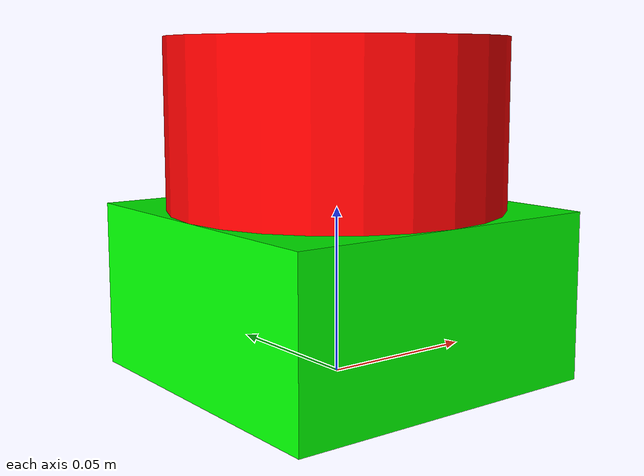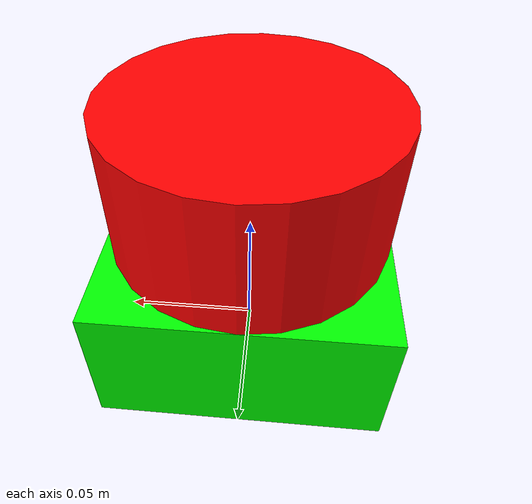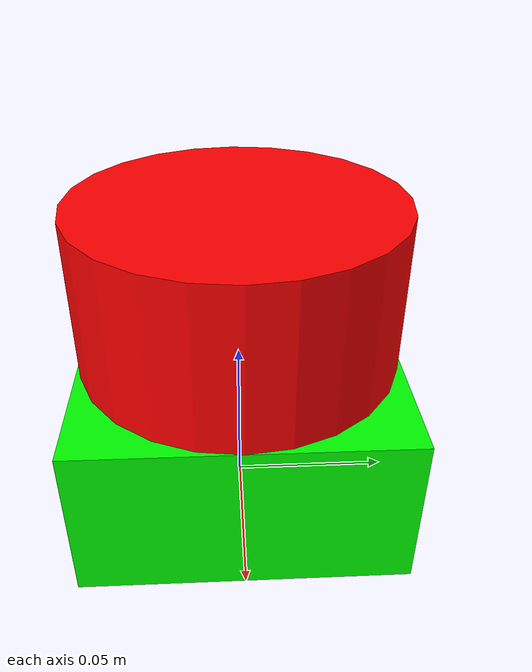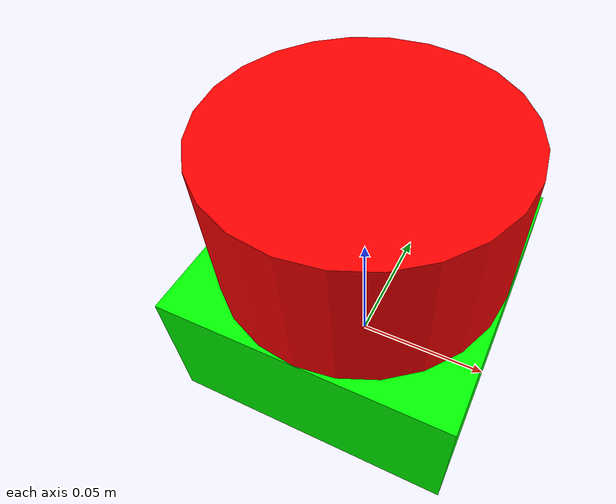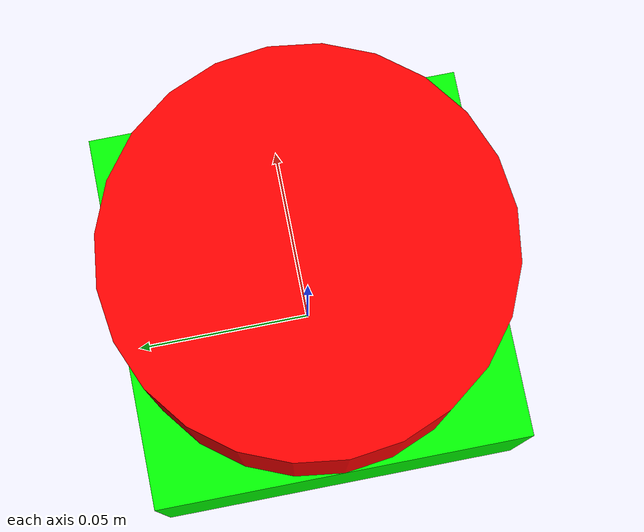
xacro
<?xml version="1.0"?>
<robot xmlns:xacro="http://www.ros.org/wiki/xacro" name="block_robot">

<xacro:property name="base_height" value="0.05" />
<xacro:property name="base_width" value="0.1" />
<xacro:property name="base_length" value="0.1" />
<xacro:property name="cylinder_length" value="0.05" />
<xacro:property name="radius" value="0.05" />

<xacro:macro name="boxInertia" params = "w d h M">
  <inertial>
     <mass value="${M}"/>
     <inertia ixx="${1/12 * M * (h*h+d*d)}" iyy="${1/12 * M * (h*h+w*w)}" izz="${1/12 * M * (w*w+d*d)}" ixy="0" ixz="0" iyz="0"/>
  </inertial>
</xacro:macro>

 <xacro:macro name="cylinderInertia" params = "h r M">
  <inertial>
    <mass value="${M}"/>
     <inertia ixx="${1/12 * M * h*h + 1/4 * M * r*r}" iyy="${1/12 * M * h*h + 1/4 * M * r*r}" izz="${1/2 * M * r*r}" ixy="0" ixz="0" iyz="0" />
  </inertial>
</xacro:macro>

<material name="red">
    <color rgba="1 0 0 1"/>
  </material>
  <material name="green">
    <color rgba="0 1 0 1"/>
  </material>

    <link name="base_footprint">
  </link>

  <gazebo reference="base_link">
    <material>Gazebo/Green</material>
  </gazebo>

   <link name="base_link">
    <visual>
      <geometry>
        <box size="${base_length} ${base_width} ${base_height}"/>
      </geometry>
      <material name="green"/>
    </visual>

     <collision>
      <geometry>
       <box size="${base_length} ${base_width} ${base_height}"/>
      </geometry>
    </collision>

   <xacro:boxInertia w="0.1" d="0.1" h="0.05" M="4.5"/>
  </link>

    <gazebo reference="laser_link">
    <material>Gazebo/Red</material>
  </gazebo>

  <link name="laser_link">

    <visual>
      <geometry>
        <cylinder length="${cylinder_length}" radius="${radius}"/>
      </geometry>
      <material name="red"/>
    </visual>

    <collision>
      <geometry>
        <cylinder length="${cylinder_length}" radius="${radius}" />
      </geometry>
    </collision>

 <xacro:cylinderInertia h="0.05" r="0.05" M="0.01"/>
  </link>

    <joint name="base_joint" type="fixed">
    <origin xyz="0.0 0.0 0.025" rpy="0.0 0.0 0.0" />
    <parent link="base_footprint" />
    <child link="base_link" />
    <axis xyz="0 0 1" />
  </joint>

  <joint name="laser_joint" type="fixed">
    <origin xyz="0.0 0.0 0.05" rpy="0.0 0.0 0.0" />
    <parent link="base_link" />
    <child link="laser_link" />
    <axis xyz="0 0 1" />
  </joint>

  <gazebo reference="laser_link">
    <static>true</static>
    <sensor type="ray" name="head_hokuyo_sensor">
      <pose>0 0 0 0 0 0</pose>
      <visualize>true</visualize>
      <update_rate>10</update_rate>
      <ray>
        <scan>
          <horizontal>
            <samples>360</samples>
            <resolution>1</resolution>
            <min_angle>-3.1415</min_angle>
            <max_angle>3.1240</max_angle>
          </horizontal>
        </scan>
        <range>
          <min>0.20</min>
          <max>10.0</max>
          <resolution>0.01</resolution>
        </range>
      </ray>
      <plugin name="gazebo_ros_head_hokuyo_controller" filename="libgazebo_ros_laser.so">
        <topicName>scan</topicName>
        <frameName>laser_link</frameName>
      </plugin>
    </sensor>
  </gazebo>

  <gazebo>
    <plugin name="object_controller" filename="libgazebo_ros_planar_move.so">
      <commandTopic>cmd_vel</commandTopic>
      <odometryTopic>odom</odometryTopic>
      <odometryFrame>odom</odometryFrame>
      <odometryRate>20.0</odometryRate>
      <robotBaseFrame>base_footprint</robotBaseFrame>
    </plugin>
  </gazebo>

</robot>
